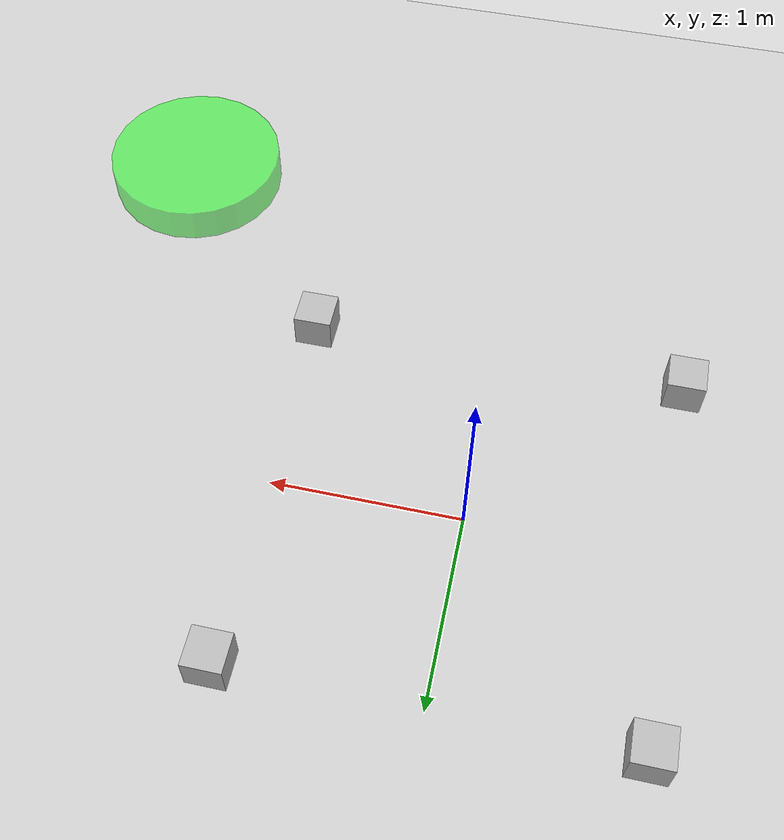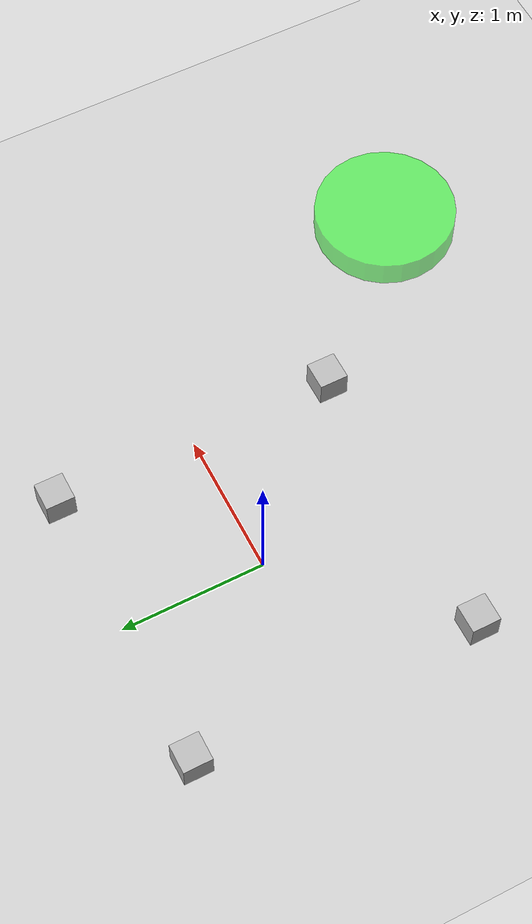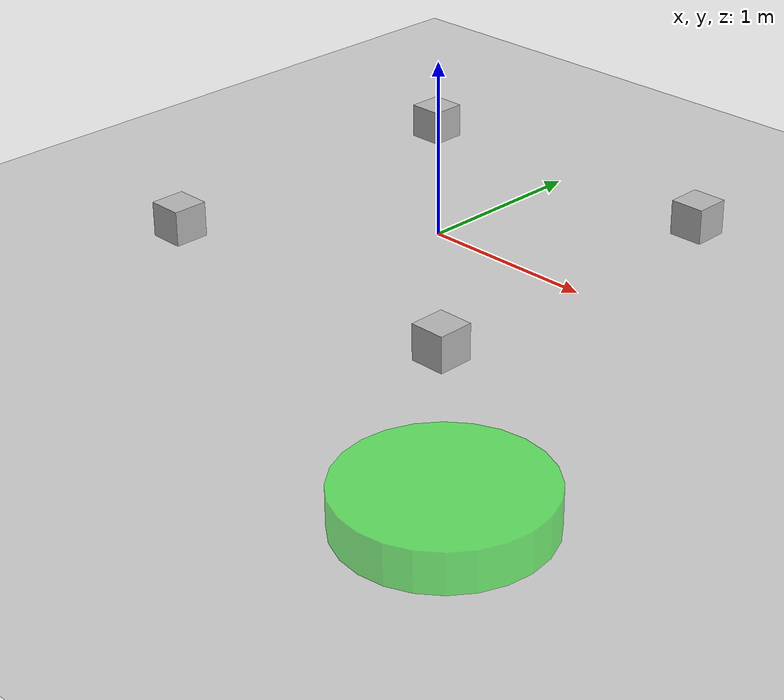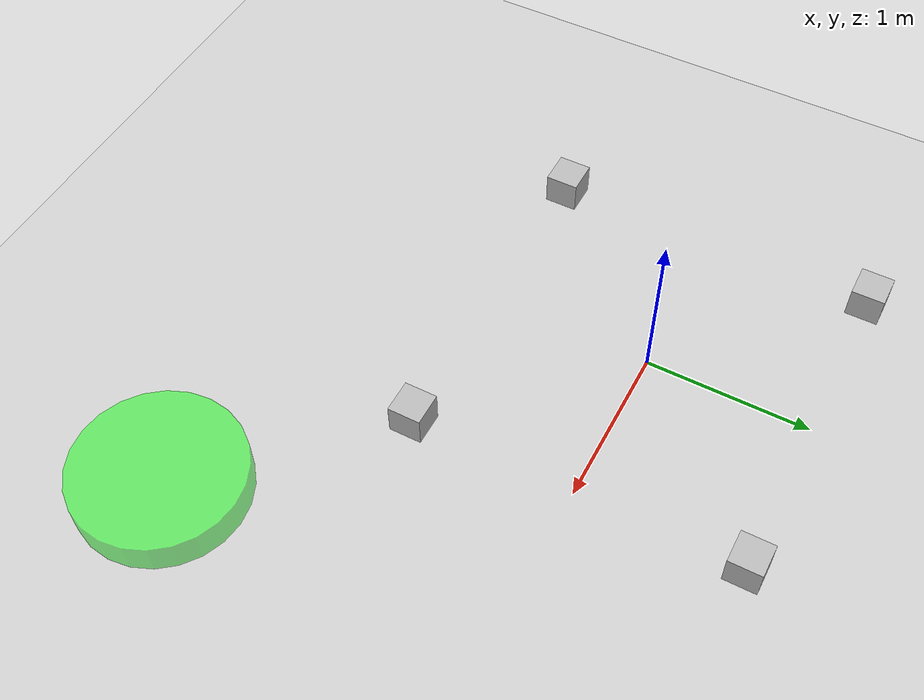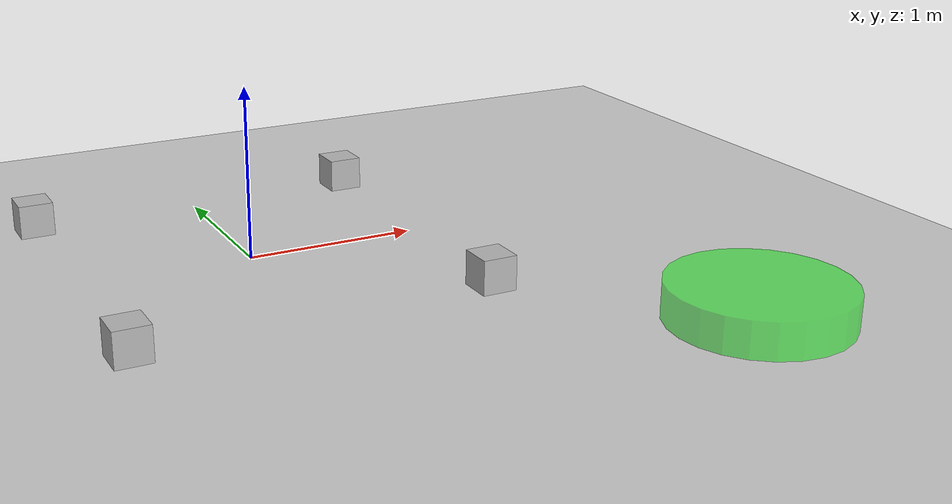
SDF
<?xml version="1.0" ?>
<sdf version="1.5">
  <world name="default">
    <!-- A global light source -->
    <include>
      <uri>model://sun</uri>
    </include>
    <!-- A ground plane -->
    <include>
      <uri>model://ground_plane</uri>
    </include>

    <!-- Obstacles -->
    <model name="obstacle1">
      <pose>1 -1 0.1 0 0 0</pose>
      <link name="link">
        <collision name="collision">
          <geometry>
            <box>
              <size>0.2 0.2 0.2</size>
            </box>
          </geometry>
        </collision>
        <visual name="visual">
          <geometry>
            <box>
              <size>0.2 0.2 0.2</size>
            </box>
          </geometry>
        </visual>
      </link>
    </model>

    <model name="obstacle2">
      <pose>1 1 0.1 0 0 0</pose>
      <link name="link">
        <collision name="collision">
          <geometry>
            <box>
              <size>0.2 0.2 0.2</size>
            </box>
          </geometry>
        </collision>
        <visual name="visual">
          <geometry>
            <box>
              <size>0.2 0.2 0.2</size>
            </box>
          </geometry>
        </visual>
      </link>
    </model>

    <model name="obstacle3">
      <pose>-1 1 0.1 0 0 0</pose>
      <link name="link">
        <collision name="collision">
          <geometry>
            <box>
              <size>0.2 0.2 0.2</size>
            </box>
          </geometry>
        </collision>
        <visual name="visual">
          <geometry>
            <box>
              <size>0.2 0.2 0.2</size>
            </box>
          </geometry>
        </visual>
      </link>
    </model>

    <model name="obstacle4">
      <pose>-1 -1 0.1 0 0 0</pose>
      <link name="link">
        <collision name="collision">
          <geometry>
            <box>
              <size>0.2 0.2 0.2</size>
            </box>
          </geometry>
        </collision>
        <visual name="visual">
          <geometry>
            <box>
              <size>0.2 0.2 0.2</size>
            </box>
          </geometry>
        </visual>
      </link>
    </model>

    <!-- Target point -->
    <model name="virtual_goal">
      <static>true</static>
      <pose>2 -2 0 0 0 0</pose>
      <link name="link">
        <visual name="visual">
          <geometry>
            <cylinder>
              <radius>0.5</radius>
              <length>0.4</length>
            </cylinder>
          </geometry>
          <material>
            <ambient>0 1 0 0.5</ambient>
            <diffuse>0 1 0 0.5</diffuse>
          </material>
        </visual>
        <!-- Removed collision part to make it non-detectable by LIDAR -->
      </link>
    </model>
  </world>
</sdf>
